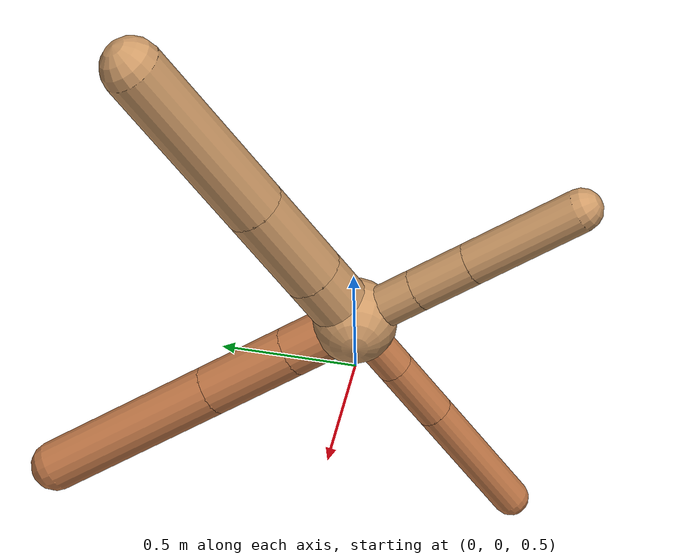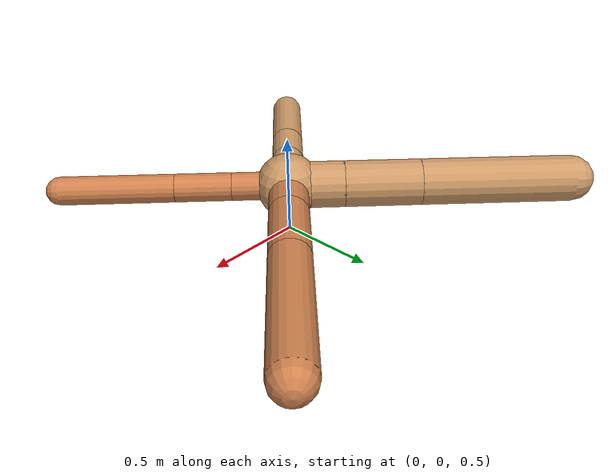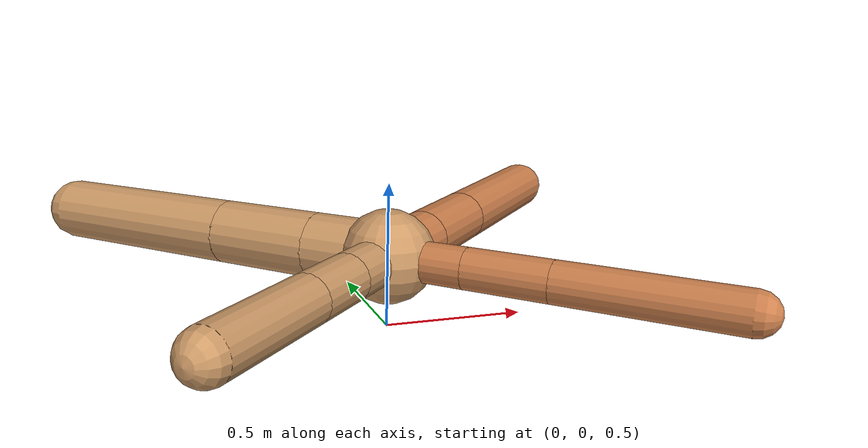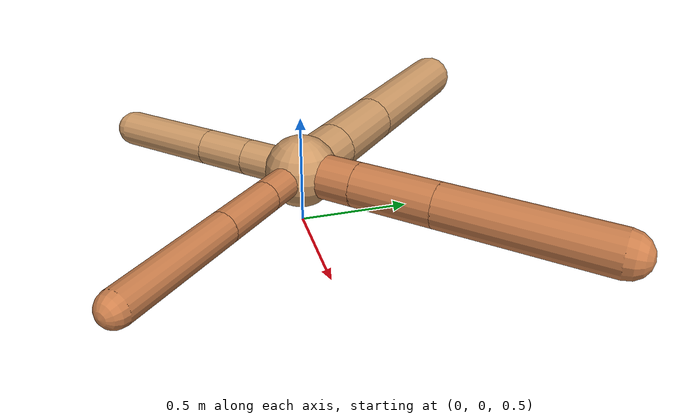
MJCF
<?xml version="1.0" ?>
<mujoco model="ant">

	<compiler angle="degree" coordinate="local" inertiafromgeom="true"/>

	<option integrator="RK4" timestep="0.01"/>

	<custom>

		<numeric data="0.0 0.0 0.55 1.0 0.0 0.0 0.0 0.0 1.0 0.0 -1.0 0.0 -1.0 0.0 1.0" name="init_qpos"/>

	</custom>

	<default>

		<joint armature="1" damping="1" limited="true"/>

		<geom conaffinity="0" condim="3" density="5.0" friction="1.5 0.1 0.1" margin="0.01" rgba="0.8 0.6 0.4 1"/>

	</default>

	<worldbody>

		<body name="torso" pos="0 0 0.75">

			<geom name="torso_geom" pos="0 0 0" size="0.16292641419564863" type="sphere"/>

			<!--joint armature="0" damping="0" limited="false" margin="0.01" name="root" pos="0 0 0" type="free"/-->

			<body name="front_left_leg" pos="0 0 0">

				<geom fromto="0 0 0 0.2 0.2 0" name="aux_1_geom" size="0.0993162804487132" type="capsule" rgba=".8 .5 .3 1"/>

				<body name="aux_1" pos="0.2 0.2 0">

					<joint axis="0 0 1" name="hip_1" pos="0.0 0.0 0.0" range="-40 40" type="hinge"/>

					<geom fromto="0 0 0 0.2609275506163036 0.2609275506163036 0" name="left_leg_geom" size="0.0993162804487132" type="capsule" rgba=".8 .5 .3 1"/>

					<body pos="0.2609275506163036 0.2609275506163036 0" name="front_left_foot">

						<joint axis="-1 1 0" name="ankle_1" pos="0.0 0.0 0.0" range="30 100" type="hinge"/>

						<geom fromto="0 0 0 0.5218551012326073 0.5218551012326073 0" name="left_ankle_geom" size="0.0993162804487132" type="capsule" rgba=".8 .5 .3 1"/>

					</body>

				</body>

			</body>

			<body name="front_right_leg" pos="0 0 0">

				<geom fromto="0 0 0 -0.2 0.2 0" name="aux_2_geom" size="0.11748409423527376" type="capsule"/>

				<body name="aux_2" pos="-0.2 0.2 0">

					<joint axis="0 0 1" name="hip_2" pos="0.0 0.0 0.0" range="-40 40" type="hinge"/>

					<geom fromto="0 0 0 -0.274289868042945 0.274289868042945 0" name="right_leg_geom" size="0.11748409423527376" type="capsule"/>

					<body pos="-0.274289868042945 0.274289868042945 0" name="front_right_foot">

						<joint axis="1 1 0" name="ankle_2" pos="0.0 0.0 0.0" range="-100 -30" type="hinge"/>

						<geom fromto="0 0 0 -0.54857973608589 0.54857973608589 0" name="right_ankle_geom" size="0.11748409423527376" type="capsule"/>

					</body>

				</body>

			</body>

			<body name="left_back_leg" pos="0 0 0">

				<geom fromto="0 0 0 -0.2 -0.2 0" name="aux_3_geom" size="0.08296102264829487" type="capsule"/>

				<body name="aux_3" pos="-0.2 -0.2 0">

					<joint axis="0 0 1" name="hip_3" pos="0.0 0.0 0.0" range="-40 40" type="hinge"/>

					<geom fromto="0 0 0 -0.16651931835034317 -0.16651931835034317 0" name="back_leg_geom" size="0.08296102264829487" type="capsule"/>

					<body pos="-0.16651931835034317 -0.16651931835034317 0" name="left_back_foot">

						<joint axis="-1 1 0" name="ankle_3" pos="0.0 0.0 0.0" range="-100 -30" type="hinge"/>

						<geom fromto="0 0 0 -0.33303863670068634 -0.33303863670068634 0" name="third_ankle_geom" size="0.08296102264829487" type="capsule"/>

					</body>

				</body>

			</body>

			<body name="right_back_leg" pos="0 0 0">

				<geom fromto="0 0 0 0.2 -0.2 0" name="aux_4_geom" size="0.07096007385386396" type="capsule" rgba=".8 .5 .3 1"/>

				<body name="aux_4" pos="0.2 -0.2 0">

					<joint axis="0 0 1" name="hip_4" pos="0.0 0.0 0.0" range="-40 40" type="hinge"/>

					<geom fromto="0 0 0 0.2000335857796512 -0.2000335857796512 0" name="rightback_leg_geom" size="0.07096007385386396" type="capsule" rgba=".8 .5 .3 1"/>

					<body pos="0.2000335857796512 -0.2000335857796512 0" name="right_back_foot">

						<joint axis="1 1 0" name="ankle_4" pos="0.0 0.0 0.0" range="30 100" type="hinge"/>

						<geom fromto="0 0 0 0.4000671715593024 -0.4000671715593024 0" name="fourth_ankle_geom" size="0.07096007385386396" type="capsule" rgba=".8 .5 .3 1"/>

					</body>

				</body>

			</body>

		</body>

	</worldbody>

	<actuator>

		<motor ctrllimited="true" ctrlrange="-1.0 1.0" joint="hip_4" gear="150"/>

		<motor ctrllimited="true" ctrlrange="-1.0 1.0" joint="ankle_4" gear="150"/>

		<motor ctrllimited="true" ctrlrange="-1.0 1.0" joint="hip_1" gear="150"/>

		<motor ctrllimited="true" ctrlrange="-1.0 1.0" joint="ankle_1" gear="150"/>

		<motor ctrllimited="true" ctrlrange="-1.0 1.0" joint="hip_2" gear="150"/>

		<motor ctrllimited="true" ctrlrange="-1.0 1.0" joint="ankle_2" gear="150"/>

		<motor ctrllimited="true" ctrlrange="-1.0 1.0" joint="hip_3" gear="150"/>

		<motor ctrllimited="true" ctrlrange="-1.0 1.0" joint="ankle_3" gear="150"/>

	</actuator>

</mujoco>
